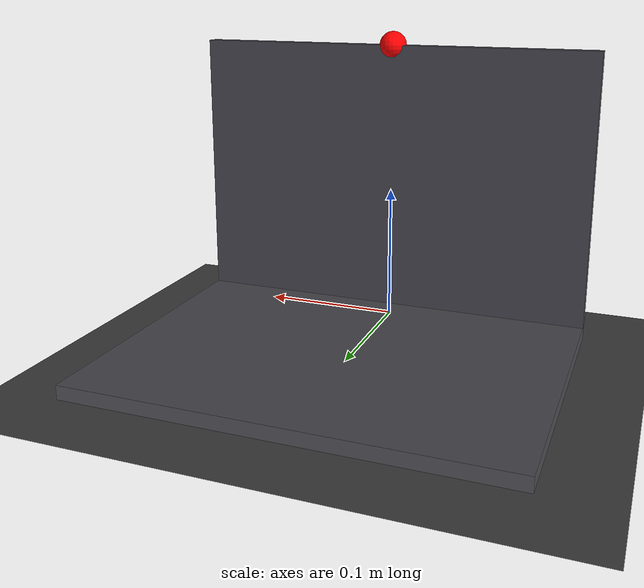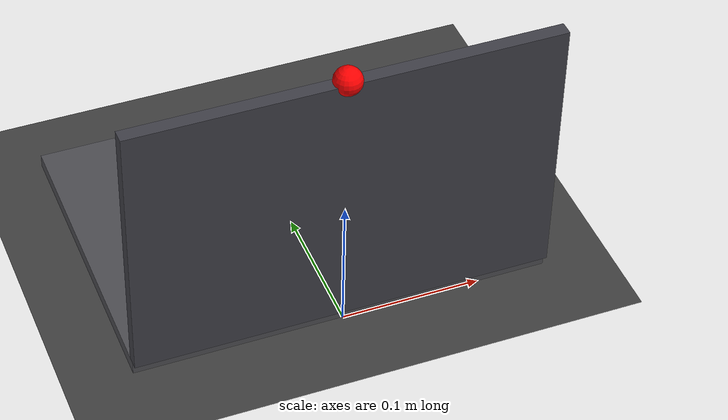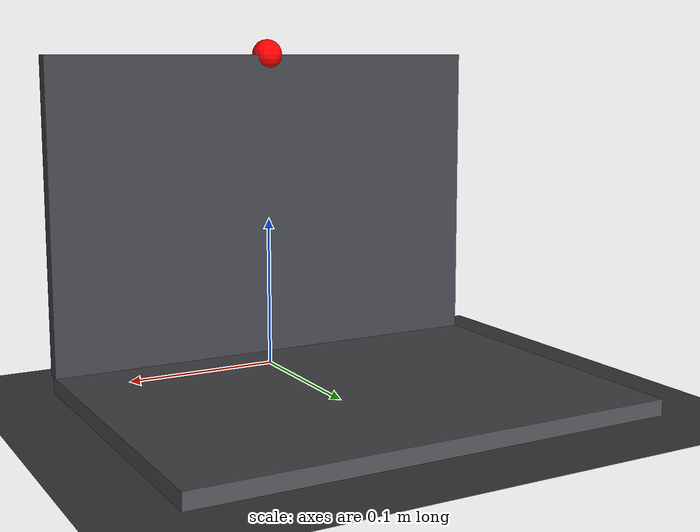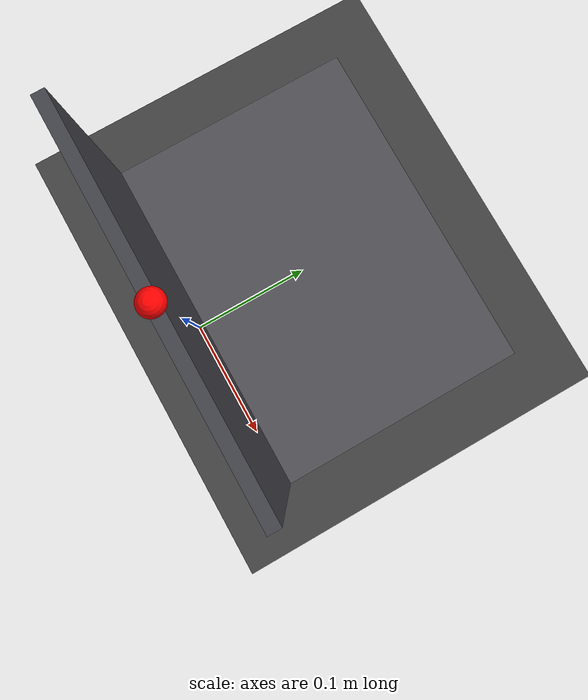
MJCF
<mujoco model="laptop_hinge">
  <compiler angle="radian"/>
  <option timestep="0.002" gravity="0 0 -9.81"/>
  <asset>
    <texture type="skybox" builtin="gradient" rgb1="0.8 0.9 1" rgb2="0.3 0.4 0.5" width="256" height="256"/>
    <texture name="grid" type="2d" builtin="checker" rgb1="0.2 0.2 0.2" rgb2="0.3 0.3 0.3" width="300" height="300"/>
    <material name="grid" texture="grid" texrepeat="5 5" reflectance="0.1"/>
  </asset>
  <worldbody>
    <light pos="0 -1 3" dir="0 0.3 -1" diffuse="1 1 1"/>
    <geom name="floor" type="plane" size="3 3 0.1" material="grid"/>
    <geom name="base" type="box" pos="0 0.11 0.005" size="0.15 0.11 0.005"
          rgba="0.3 0.3 0.32 1" contype="0" conaffinity="0"/>
    <!-- Screen: small inertia, friction-dominated, stays where you put it.
         Hinge axis along x at the rear edge of the base. -->
    <body name="door" pos="0 0 0.01">
      <joint name="hinge" type="hinge" pos="0 0 0" axis="1 0 0"
             limited="true" range="0 2.2" damping="0.02" frictionloss="0.35"/>
      <geom name="panel" type="box" pos="0 0 0.10" size="0.15 0.005 0.10"
            density="700" rgba="0.25 0.25 0.28 1" contype="0" conaffinity="0"/>
      <site name="handle" pos="0 0 0.20" size="0.01" rgba="1 0 0 1"/>
    </body>
    <camera name="view" pos="0.8 -0.9 0.5" xyaxes="1 0.9 0 0 0.4 1"/>
  </worldbody>
</mujoco>
